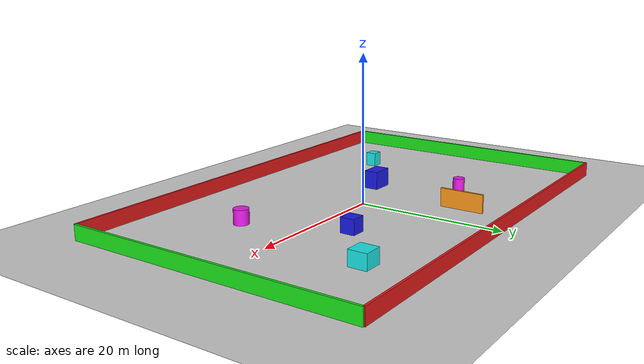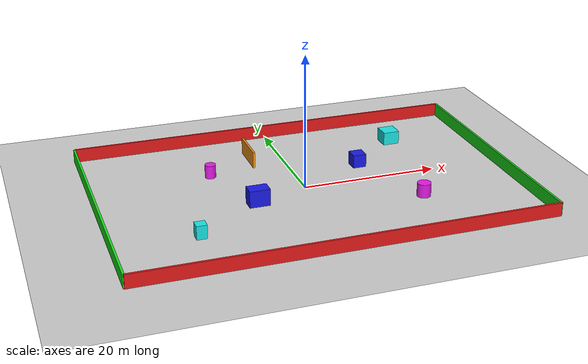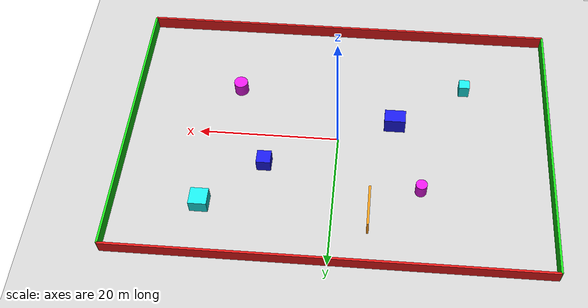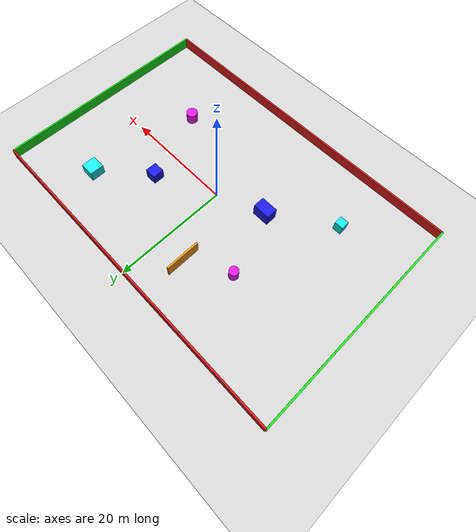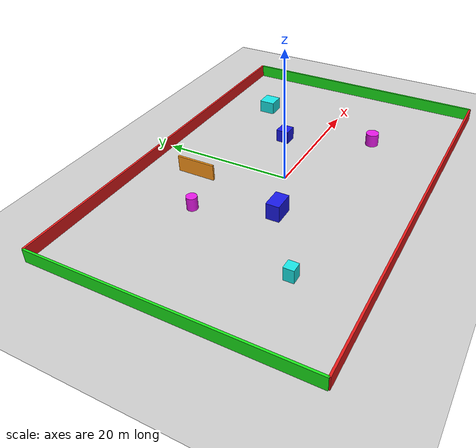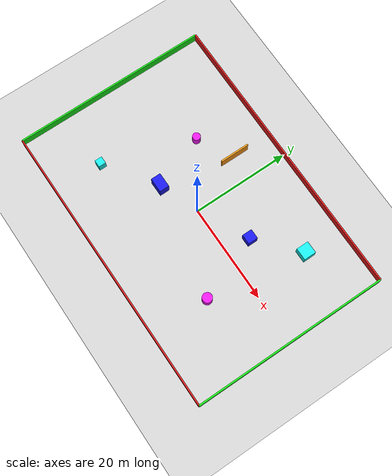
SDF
<sdf version='1.7'>
  <world name='ackermann_test'>
    <light name='sun' type='directional'>
      <cast_shadows>1</cast_shadows>
      <pose>0 0 30 0 -0.4 0</pose>
      <diffuse>0.8 0.8 0.8 1</diffuse>
      <specular>0.2 0.2 0.2 1</specular>
      <attenuation>
        <range>1000</range>
        <constant>0.9</constant>
        <linear>0.01</linear>
        <quadratic>0.001</quadratic>
      </attenuation>
      <direction>-0.5 0.1 -0.9</direction>
    </light>

    <model name='ground_plane'>
      <static>1</static>
      <link name='link'>
        <collision name='collision'>
          <geometry>
            <plane>
              <normal>0 0 1</normal>
              <size>100 100</size>
            </plane>
          </geometry>
          <surface>
            <friction>
              <ode>
                <mu>100</mu>
                <mu2>50</mu2>
              </ode>
            </friction>
          </surface>
          <max_contacts>10</max_contacts>
        </collision>
        <visual name='visual'>
          <cast_shadows>0</cast_shadows>
          <geometry>
            <plane>
              <normal>0 0 1</normal>
              <size>100 100</size>
            </plane>
          </geometry>
          <material>
            <script>
              <uri>file://media/materials/scripts/gazebo.material</uri>
              <name>Gazebo/Grey</name>
            </script>
          </material>
        </visual>
      </link>
    </model>

    <gravity>0 0 -9.8</gravity>
    <magnetic_field>6e-06 2.3e-05 -4.2e-05</magnetic_field>
    <atmosphere type='adiabatic'/>
    <physics type='ode'>
      <max_step_size>0.001</max_step_size>
      <real_time_factor>1</real_time_factor>
      <real_time_update_rate>1000</real_time_update_rate>
    </physics>
    <scene>
      <ambient>0.4 0.4 0.4 1</ambient>
      <background>0.7 0.7 0.7 1</background>
      <shadows>1</shadows>
    </scene>

    <model name='wall_north'>
      <static>1</static>
      <link name='link'>
        <collision name='collision'>
          <geometry>
            <box><size>60 0.3 2</size></box>
          </geometry>
          <pose>0 0 1 0 0 0</pose>
        </collision>
        <visual name='visual'>
          <geometry>
            <box><size>60 0.3 2</size></box>
          </geometry>
          <pose>0 0 1 0 0 0</pose>
          <material>
            <script>
              <uri>file://media/materials/scripts/gazebo.material</uri>
              <name>Gazebo/Grey</name>
            </script>
            <ambient>0.9 0.1 0.1 1</ambient>
          </material>
        </visual>
      </link>
      <pose>0 20 0 0 0 0</pose>
    </model>

    <model name='wall_south'>
      <static>1</static>
      <link name='link'>
        <collision name='collision'>
          <geometry>
            <box><size>60 0.3 2</size></box>
          </geometry>
          <pose>0 0 1 0 0 0</pose>
        </collision>
        <visual name='visual'>
          <geometry>
            <box><size>60 0.3 2</size></box>
          </geometry>
          <pose>0 0 1 0 0 0</pose>
          <material>
            <script>
              <uri>file://media/materials/scripts/gazebo.material</uri>
              <name>Gazebo/Grey</name>
            </script>
            <ambient>0.9 0.1 0.1 1</ambient>
          </material>
        </visual>
      </link>
      <pose>0 -20 0 0 0 0</pose>
    </model>

    <model name='wall_east'>
      <static>1</static>
      <link name='link'>
        <collision name='collision'>
          <geometry>
            <box><size>0.3 40 2</size></box>
          </geometry>
          <pose>0 0 1 0 0 0</pose>
        </collision>
        <visual name='visual'>
          <geometry>
            <box><size>0.3 40 2</size></box>
          </geometry>
          <pose>0 0 1 0 0 0</pose>
          <material>
            <script>
              <uri>file://media/materials/scripts/gazebo.material</uri>
              <name>Gazebo/Grey</name>
            </script>
            <ambient>0.1 0.9 0.1 1</ambient>
          </material>
        </visual>
      </link>
      <pose>30 0 0 0 0 0</pose>
    </model>

    <model name='wall_west'>
      <static>1</static>
      <link name='link'>
        <collision name='collision'>
          <geometry>
            <box><size>0.3 40 2</size></box>
          </geometry>
          <pose>0 0 1 0 0 0</pose>
        </collision>
        <visual name='visual'>
          <geometry>
            <box><size>0.3 40 2</size></box>
          </geometry>
          <pose>0 0 1 0 0 0</pose>
          <material>
            <script>
              <uri>file://media/materials/scripts/gazebo.material</uri>
              <name>Gazebo/Grey</name>
            </script>
            <ambient>0.1 0.9 0.1 1</ambient>
          </material>
        </visual>
      </link>
      <pose>-30 0 0 0 0 0</pose>
    </model>

    <model name='obstacle_box_1'>
      <static>1</static>
      <link name='link'>
        <collision name='collision'>
          <geometry>
            <box><size>2 2 2</size></box>
          </geometry>
          <pose>0 0 1 0 0 0</pose>
        </collision>
        <visual name='visual'>
          <geometry>
            <box><size>2 2 2</size></box>
          </geometry>
          <pose>0 0 1 0 0 0</pose>
          <material>
            <script>
              <uri>file://media/materials/scripts/gazebo.material</uri>
              <name>Gazebo/Grey</name>
            </script>
            <ambient>0.1 0.1 0.9 1</ambient>
          </material>
        </visual>
      </link>
      <pose>10 5 0 0 0 0</pose>
    </model>

    <model name='obstacle_box_2'>
      <static>1</static>
      <link name='link'>
        <collision name='collision'>
          <geometry>
            <box><size>3 2 2.5</size></box>
          </geometry>
          <pose>0 0 1.25 0 0 0</pose>
        </collision>
        <visual name='visual'>
          <geometry>
            <box><size>3 2 2.5</size></box>
          </geometry>
          <pose>0 0 1.25 0 0 0</pose>
          <material>
            <script>
              <uri>file://media/materials/scripts/gazebo.material</uri>
              <name>Gazebo/Grey</name>
            </script>
            <ambient>0.1 0.1 0.9 1</ambient>
          </material>
        </visual>
      </link>
      <pose>-8 -3 0 0 0 0</pose>
    </model>

    <model name='obstacle_cylinder_1'>
      <static>1</static>
      <link name='link'>
        <collision name='collision'>
          <geometry>
            <cylinder><radius>1</radius><length>2</length></cylinder>
          </geometry>
          <pose>0 0 1 0 0 0</pose>
        </collision>
        <visual name='visual'>
          <geometry>
            <cylinder><radius>1</radius><length>2</length></cylinder>
          </geometry>
          <pose>0 0 1 0 0 0</pose>
          <material>
            <script>
              <uri>file://media/materials/scripts/gazebo.material</uri>
              <name>Gazebo/Grey</name>
            </script>
            <ambient>0.9 0.1 0.9 1</ambient>
          </material>
        </visual>
      </link>
      <pose>15 -8 0 0 0 0</pose>
    </model>

    <model name='obstacle_cylinder_2'>
      <static>1</static>
      <link name='link'>
        <collision name='collision'>
          <geometry>
            <cylinder><radius>0.8</radius><length>2</length></cylinder>
          </geometry>
          <pose>0 0 1 0 0 0</pose>
        </collision>
        <visual name='visual'>
          <geometry>
            <cylinder><radius>0.8</radius><length>2</length></cylinder>
          </geometry>
          <pose>0 0 1 0 0 0</pose>
          <material>
            <script>
              <uri>file://media/materials/scripts/gazebo.material</uri>
              <name>Gazebo/Grey</name>
            </script>
            <ambient>0.9 0.1 0.9 1</ambient>
          </material>
        </visual>
      </link>
      <pose>-12 8 0 0 0 0</pose>
    </model>

    <model name='obstacle_wall_lshape'>
      <static>1</static>
      <link name='link'>
        <collision name='collision'>
          <geometry>
            <box><size>6 0.3 2.5</size></box>
          </geometry>
          <pose>0 0 1.25 0 0 0</pose>
        </collision>
        <visual name='visual'>
          <geometry>
            <box><size>6 0.3 2.5</size></box>
          </geometry>
          <pose>0 0 1.25 0 0 0</pose>
          <material>
            <script>
              <uri>file://media/materials/scripts/gazebo.material</uri>
              <name>Gazebo/Grey</name>
            </script>
            <ambient>1 0.6 0.1 1</ambient>
          </material>
        </visual>
      </link>
      <pose>-5 12 0 0 0 1.5708</pose>
    </model>

    <model name='obstacle_box_3'>
      <static>1</static>
      <link name='link'>
        <collision name='collision'>
          <geometry>
            <box><size>2.5 2.5 2</size></box>
          </geometry>
          <pose>0 0 1 0 0 0</pose>
        </collision>
        <visual name='visual'>
          <geometry>
            <box><size>2.5 2.5 2</size></box>
          </geometry>
          <pose>0 0 1 0 0 0</pose>
          <material>
            <script>
              <uri>file://media/materials/scripts/gazebo.material</uri>
              <name>Gazebo/Grey</name>
            </script>
            <ambient>0.1 0.9 0.9 1</ambient>
          </material>
        </visual>
      </link>
      <pose>18 12 0 0 0 0</pose>
    </model>

    <model name='obstacle_box_4'>
      <static>1</static>
      <link name='link'>
        <collision name='collision'>
          <geometry>
            <box><size>1.5 1.5 2</size></box>
          </geometry>
          <pose>0 0 1 0 0 0</pose>
        </collision>
        <visual name='visual'>
          <geometry>
            <box><size>1.5 1.5 2</size></box>
          </geometry>
          <pose>0 0 1 0 0 0</pose>
          <material>
            <script>
              <uri>file://media/materials/scripts/gazebo.material</uri>
              <name>Gazebo/Grey</name>
            </script>
            <ambient>0.1 0.9 0.9 1</ambient>
          </material>
        </visual>
      </link>
      <pose>-18 -10 0 0 0 0</pose>
    </model>

  </world>
</sdf>
